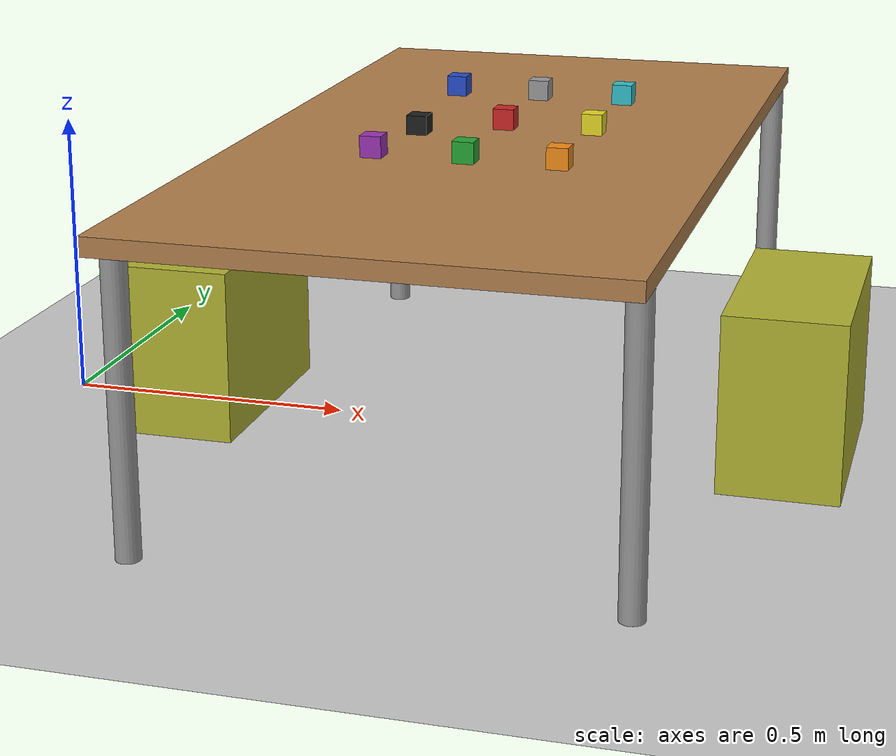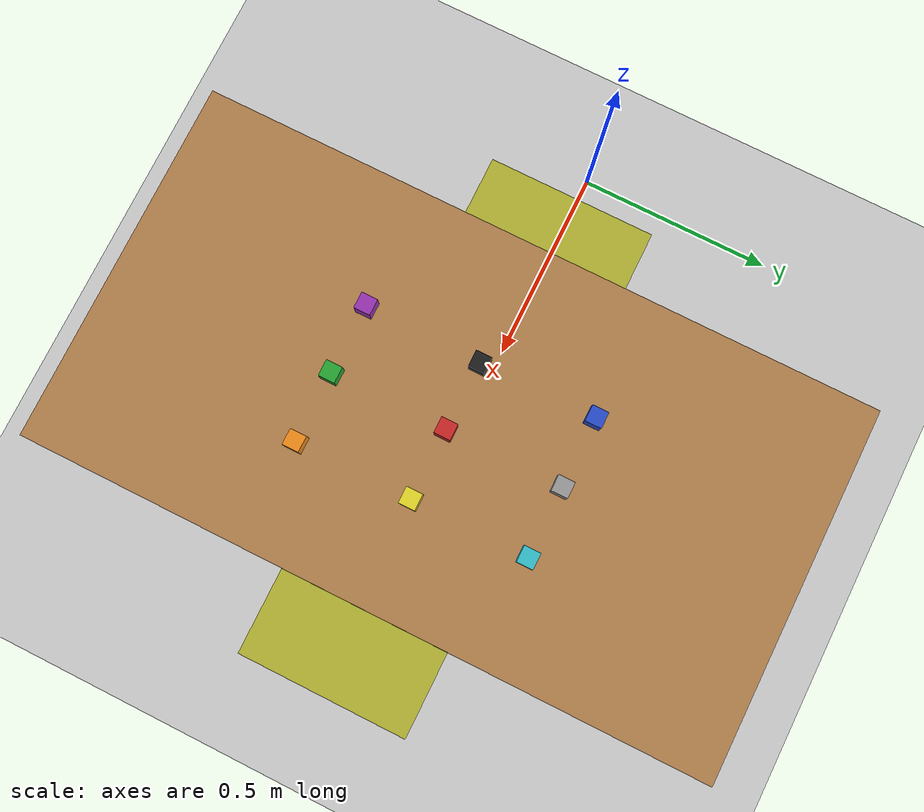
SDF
<sdf version="1.6">
 <world name="default">
  <physics name="5ms" type="ignored">
   <max_step_size>0.020</max_step_size>
   <real_time_factor>1.0</real_time_factor>
  </physics>
  <plugin filename="gz-sim-physics-system" name="gz::sim::systems::Physics"/>
  <plugin filename="gz-sim-user-commands-system" name="gz::sim::systems::UserCommands"/>
  <plugin filename="gz-sim-scene-broadcaster-system" name="gz::sim::systems::SceneBroadcaster"/>
  <plugin filename="gz-sim-sensors-system" name="gz::sim::systems::Sensors">
   <render_engine>ogre2</render_engine>
  </plugin>
  <plugin filename="gz-sim-imu-system" name="gz::sim::systems::Imu"/>
  <gravity>0.0 0.0 -9.8</gravity>
  <scene>
   <ambient>0.4 0.4 0.4 1</ambient>
   <background>0.7 0.7 0.7 1</background>
   <shadows>false</shadows>
   <grid>false</grid>
   <origin_visual>false</origin_visual>
  </scene>
  <light name="sun" type="directional">
   <pose>0 0 10 0 -0 0</pose>
   <diffuse>0.8 0.8 0.8 1</diffuse>
   <specular>0.2 0.2 0.2 1</specular>
   <attenuation>
    <range>1000</range>
    <constant>0.9</constant>
    <linear>0.01</linear>
    <quadratic>0.001</quadratic>
   </attenuation>
   <direction>-0.5 0.1 -0.9</direction>
  </light>
  <model name="ground_plane">
   <pose>0.5 0 0 0 0 0</pose>
   <static>true</static>
   <link name="ground_plane_link">
    <collision name="ground_plane_collision">
     <pose>0 0 -0.05 0 0 0</pose>
     <geometry><box><size>50 50 0.1</size></box></geometry>
    </collision>
    <visual name="ground_plane_visual">
     <geometry><plane><normal>0 0 1</normal><size>5 2</size></plane></geometry>
     <material><diffuse>0.8 0.8 0.8 1</diffuse><specular>0.8 0.8 0.8 1</specular></material>
    </visual>
   </link>
  </model>
  <model name="underground_plane">
   <pose>0.5 0 -10.0 0 0 0</pose>
   <static>true</static>
   <link name="underground_plane_link">
    <collision name="underground_plane_collision">
     <geometry><plane><normal>0 0 1</normal></plane></geometry>
    </collision>
   </link>
  </model>
  <model name="table">
   <static>true</static>
   <include><uri>model://Table</uri></include>
   <pose>0.78 0.0 0.0 0 0 1.5708</pose>
  </model>
  <model name="cube_red">
   <pose>0.8 0.0 0.55 0 0 0</pose>
   <link name="cube_red_link">
    <inertial>
     <inertia>
      <ixx>0.00025</ixx>
      <ixy>0.0</ixy>
      <ixz>0.0</ixz>
      <iyy>0.00025</iyy>
      <iyz>0.0</iyz>
      <izz>0.00025</izz>
     </inertia>
     <mass>0.1</mass>
    </inertial>
    <collision name="cube_red_collision">
     <geometry><box><size>0.035 0.035 0.035</size></box></geometry>
     <surface><friction><ode><mu>200.0</mu><mu2>200.0</mu2></ode></friction></surface>
    </collision>
    <visual name="cube_red_visual">
     <geometry><box><size>0.035 0.035 0.035</size></box></geometry>
     <material>
      <diffuse>0.1 0.1 0.1 1</diffuse>
      <specular>0.4 0.4 0.4 1</specular>
      <script><uri>file://media/materials/scripts/gazebo.material</uri><name>Gazebo/RedGlow</name></script>
     </material>
    </visual>
   </link>
  </model>
  <model name="cube_blue">
   <pose>0.65 0.25 0.55 0 0 0</pose>
   <link name="cube_blue_link">
    <inertial>
     <inertia>
      <ixx>0.00025</ixx>
      <ixy>0.0</ixy>
      <ixz>0.0</ixz>
      <iyy>0.00025</iyy>
      <iyz>0.0</iyz>
      <izz>0.00025</izz>
     </inertia>
     <mass>0.1</mass>
    </inertial>
    <collision name="cube_blue_collision">
     <geometry><box><size>0.035 0.035 0.035</size></box></geometry>
     <surface><friction><ode><mu>200.0</mu><mu2>200.0</mu2></ode></friction></surface>
    </collision>
    <visual name="cube_blue_visual">
     <geometry><box><size>0.035 0.035 0.035</size></box></geometry>
     <material>
      <diffuse>0.1 0.1 0.1 1</diffuse>
      <specular>0.4 0.4 0.4 1</specular>
      <script><uri>file://media/materials/scripts/gazebo.material</uri><name>Gazebo/Blue</name></script>
     </material>
    </visual>
   </link>
  </model>
  <model name="cube_green">
   <pose>0.8 -0.25 0.55 0 0 0</pose>
   <link name="cube_green_link">
    <inertial>
     <inertia>
      <ixx>0.00025</ixx>
      <ixy>0.0</ixy>
      <ixz>0.0</ixz>
      <iyy>0.00025</iyy>
      <iyz>0.0</iyz>
      <izz>0.00025</izz>
     </inertia>
     <mass>0.1</mass>
    </inertial>
    <collision name="cube_green_collision">
     <geometry><box><size>0.035 0.035 0.035</size></box></geometry>
     <surface><friction><ode><mu>200.0</mu><mu2>200.0</mu2></ode></friction></surface>
    </collision>
    <visual name="cube_green_visual">
     <geometry><box><size>0.035 0.035 0.035</size></box></geometry>
     <material>
      <diffuse>0.1 0.1 0.1 1</diffuse>
      <specular>0.4 0.4 0.4 1</specular>
      <script><uri>file://media/materials/scripts/gazebo.material</uri><name>Gazebo/Green</name></script>
     </material>
    </visual>
   </link>
  </model>
  <model name="cube_yellow">
   <pose>0.95 0.0 0.55 0 0 0</pose>
   <link name="cube_yellow_link">
    <inertial>
     <inertia>
      <ixx>0.00025</ixx>
      <ixy>0.0</ixy>
      <ixz>0.0</ixz>
      <iyy>0.00025</iyy>
      <iyz>0.0</iyz>
      <izz>0.00025</izz>
     </inertia>
     <mass>0.1</mass>
    </inertial>
    <collision name="cube_yellow_collision">
     <geometry><box><size>0.035 0.035 0.035</size></box></geometry>
     <surface><friction><ode><mu>200.0</mu><mu2>200.0</mu2></ode></friction></surface>
    </collision>
    <visual name="cube_yellow_visual">
     <geometry><box><size>0.035 0.035 0.035</size></box></geometry>
     <material>
      <diffuse>0.1 0.1 0.1 1</diffuse>
      <specular>0.4 0.4 0.4 1</specular>
      <script><uri>file://media/materials/scripts/gazebo.material</uri><name>Gazebo/Yellow</name></script>
     </material>
    </visual>
   </link>
  </model>
  <model name="cube_purple">
   <pose>0.65 -0.25 0.55 0 0 0</pose>
   <link name="cube_purple_link">
    <inertial>
     <inertia>
      <ixx>0.00025</ixx>
      <ixy>0.0</ixy>
      <ixz>0.0</ixz>
      <iyy>0.00025</iyy>
      <iyz>0.0</iyz>
      <izz>0.00025</izz>
     </inertia>
     <mass>0.1</mass>
    </inertial>
    <collision name="cube_purple_collision">
     <geometry><box><size>0.035 0.035 0.035</size></box></geometry>
     <surface><friction><ode><mu>200.0</mu><mu2>200.0</mu2></ode></friction></surface>
    </collision>
    <visual name="cube_purple_visual">
     <geometry><box><size>0.035 0.035 0.035</size></box></geometry>
     <material>
      <diffuse>0.1 0.1 0.1 1</diffuse>
      <specular>0.4 0.4 0.4 1</specular>
      <script><uri>file://media/materials/scripts/gazebo.material</uri><name>Gazebo/Purple</name></script>
     </material>
    </visual>
   </link>
  </model>
  <model name="cube_cyan">
   <pose>0.95 0.25 0.55 0 0 0</pose>
   <link name="cube_cyan_link">
    <inertial>
     <inertia>
      <ixx>0.00025</ixx>
      <ixy>0.0</ixy>
      <ixz>0.0</ixz>
      <iyy>0.00025</iyy>
      <iyz>0.0</iyz>
      <izz>0.00025</izz>
     </inertia>
     <mass>0.1</mass>
    </inertial>
    <collision name="cube_cyan_collision">
     <geometry><box><size>0.035 0.035 0.035</size></box></geometry>
     <surface><friction><ode><mu>200.0</mu><mu2>200.0</mu2></ode></friction></surface>
    </collision>
    <visual name="cube_cyan_visual">
     <geometry><box><size>0.035 0.035 0.035</size></box></geometry>
     <material>
      <diffuse>0.1 0.1 0.1 1</diffuse>
      <specular>0.4 0.4 0.4 1</specular>
      <script><uri>file://media/materials/scripts/gazebo.material</uri><name>Gazebo/Cyan</name></script>
     </material>
    </visual>
   </link>
  </model>
  <model name="cube_orange">
   <pose>0.95 -0.25 0.55 0 0 0</pose>
   <link name="cube_orange_link">
    <inertial>
     <inertia>
      <ixx>0.00025</ixx>
      <ixy>0.0</ixy>
      <ixz>0.0</ixz>
      <iyy>0.00025</iyy>
      <iyz>0.0</iyz>
      <izz>0.00025</izz>
     </inertia>
     <mass>0.1</mass>
    </inertial>
    <collision name="cube_orange_collision">
     <geometry><box><size>0.035 0.035 0.035</size></box></geometry>
     <surface><friction><ode><mu>200.0</mu><mu2>200.0</mu2></ode></friction></surface>
    </collision>
    <visual name="cube_orange_visual">
     <geometry><box><size>0.035 0.035 0.035</size></box></geometry>
     <material>
      <diffuse>0.1 0.1 0.1 1</diffuse>
      <specular>0.4 0.4 0.4 1</specular>
      <script><uri>file://media/materials/scripts/gazebo.material</uri><name>Gazebo/Orange</name></script>
     </material>
    </visual>
   </link>
  </model>
  <model name="cube_black">
   <pose>0.65 0.00 0.53 0.0 0 0</pose>
   <link name="cube_black_link">
    <inertial>
     <inertia>
      <ixx>0.00025</ixx>
      <ixy>0.0</ixy>
      <ixz>0.0</ixz>
      <iyy>0.00025</iyy>
      <iyz>0.0</iyz>
      <izz>0.00025</izz>
     </inertia>
     <mass>0.1</mass>
    </inertial>
    <collision name="cube_black_collision">
     <geometry><box><size>0.035 0.035 0.035</size></box></geometry>
     <surface><friction><ode><mu>200.0</mu><mu2>200.0</mu2></ode></friction></surface>
    </collision>
    <visual name="cube_black_visual">
     <geometry><box><size>0.035 0.035 0.035</size></box></geometry>
     <material>
      <diffuse>0.1 0.1 0.1 1</diffuse>
      <specular>0.4 0.4 0.4 1</specular>
      <script><uri>file://media/materials/scripts/gazebo.material</uri><name>Gazebo/Black</name></script>
     </material>
    </visual>
   </link>
  </model>
  <model name="cube_grey">
   <pose>0.8 0.25 0.55 0 0 0</pose>
   <link name="cube_grey_link">
    <inertial>
     <inertia>
      <ixx>0.00025</ixx>
      <ixy>0.0</ixy>
      <ixz>0.0</ixz>
      <iyy>0.00025</iyy>
      <iyz>0.0</iyz>
      <izz>0.00025</izz>
     </inertia>
     <mass>0.1</mass>
    </inertial>
    <collision name="cube_grey_collision">
     <geometry><box><size>0.035 0.035 0.035</size></box></geometry>
     <surface><friction><ode><mu>200.0</mu><mu2>200.0</mu2></ode></friction></surface>
    </collision>
    <visual name="cube_grey_visual">
     <geometry><box><size>0.035 0.035 0.035</size></box></geometry>
     <material>
      <diffuse>0.1 0.1 0.1 1</diffuse>
      <specular>0.4 0.4 0.4 1</specular>
      <script><uri>file://media/materials/scripts/gazebo.material</uri><name>Gazebo/Grey</name></script>
     </material>
    </visual>
   </link>
  </model>
  <model name="big_rectangle">
   <pose>1.3 0 0.15 0 0 0</pose>
   <static>true</static>
   <link name="big_rectangle_link">
    <collision name="big_rectangle_collision"><geometry><box><size>0.2 0.4 0.3</size></box></geometry></collision>
    <visual name="big_rectangle_visual">
     <geometry><box><size>0.2 0.4 0.3</size></box></geometry>
     <material><diffuse>0.7 0.7 0.2 1</diffuse><specular>0.2 0.2 0.2 1</specular></material>
    </visual>
   </link>
  </model>
  <model name="big_rectangle_two">
   <pose>0.27 0 0.15 0 0 0</pose>
   <static>true</static>
   <link name="big_rectangle_two">
    <collision name="big_rectangle_two_collision">
     <geometry><box><size>0.2 0.4 0.3</size></box></geometry>
    </collision>
    <visual name="big_rectangle_visual">
     <geometry><box><size>0.2 0.4 0.3</size></box></geometry>
     <material><diffuse>0.7 0.7 0.2 1</diffuse><specular>0.2 0.2 0.2 1</specular></material>
    </visual>
   </link>
  </model>
 </world>
</sdf>

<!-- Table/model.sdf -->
<sdf version="1.5">
  <model name="Table">
    <static>true</static>
    <link name="link">
      <collision name="surface">
        <pose>0 0 0.5 0 0 0</pose>
        <geometry>
          <box>
            <size>1.5 0.8 0.03</size>
          </box>
        </geometry>
        <surface>
          <friction>
            <ode>
              <mu>0.6</mu>
              <mu2>0.6</mu2>
            </ode>
          </friction>
        </surface>
      </collision>
      <visual name="visual1">
        <pose>0 0 0.5 0 0 0</pose>
        <geometry>
          <box>
            <size>1.5 0.8 0.03</size>
          </box>
        </geometry>
        <material>
          <diffuse>1.0 1.0 1.0</diffuse>
          <script>
            <uri>file://media/materials/scripts/gazebo.material</uri>
            <name>Gazebo/Wood</name>
          </script>
          <!-- PBR for Ignition, material scripts for gazebo classic-->
          <pbr>
            <metal>
              <albedo_map>model://Table/Table_Diffuse.jpg</albedo_map>
            </metal>
          </pbr>
        </material>
      </visual>

      <collision name="front_left_leg">
        <pose>0.68 0.38 0.25 0 0 0</pose>
        <geometry>
          <cylinder>
            <radius>0.02</radius>
            <length>0.5</length>
          </cylinder>
        </geometry>
      </collision>
      <visual name="front_left_leg">
        <pose>0.68 0.38 0.25 0 0 0</pose>
        <geometry>
          <cylinder>
            <radius>0.02</radius>
            <length>0.5</length>
          </cylinder>
        </geometry>
        <material>
          <diffuse>0.5 0.5 0.5</diffuse>
          <script>
            <uri>file://media/materials/scripts/gazebo.material</uri>
            <name>Gazebo/Grey</name>
          </script>
        </material>
      </visual>
      <collision name="front_right_leg">
        <pose>0.68 -0.38 0.25 0 0 0</pose>
        <geometry>
          <cylinder>
            <radius>0.02</radius>
            <length>0.5</length>
          </cylinder>
        </geometry>
      </collision>
      <visual name="front_right_leg">
        <pose>0.68 -0.38 0.25 0 0 0</pose>
        <geometry>
          <cylinder>
            <radius>0.02</radius>
            <length>0.5</length>
          </cylinder>
        </geometry>
        <material>
          <diffuse>0.5 0.5 0.5</diffuse>
          <script>
            <uri>file://media/materials/scripts/gazebo.material</uri>
            <name>Gazebo/Grey</name>
          </script>
        </material>
      </visual>
      <collision name="back_right_leg">
        <pose>-0.68 -0.38 0.25 0 0 0</pose>
        <geometry>
          <cylinder>
            <radius>0.02</radius>
            <length>0.5</length>
          </cylinder>
        </geometry>
      </collision>
      <visual name="back_right_leg">
        <pose>-0.68 -0.38 0.25 0 0 0</pose>
        <geometry>
          <cylinder>
            <radius>0.02</radius>
            <length>0.5</length>
          </cylinder>
        </geometry>
        <material>
          <diffuse>0.5 0.5 0.5</diffuse>
          <script>
            <uri>file://media/materials/scripts/gazebo.material</uri>
            <name>Gazebo/Grey</name>
          </script>
        </material>
      </visual>
      <collision name="back_left_leg">
        <pose>-0.68 0.38 0.25 0 0 0</pose>
        <geometry>
          <cylinder>
            <radius>0.02</radius>
            <length>0.5</length>
          </cylinder>
        </geometry>
      </collision>
      <visual name="back_left_leg">
        <pose>-0.68 0.38 0.25 0 0 0</pose>
        <geometry>
          <cylinder>
            <radius>0.02</radius>
            <length>0.5</length>
          </cylinder>
        </geometry>
        <material>
          <diffuse>0.5 0.5 0.5</diffuse>
          <script>
            <uri>file://media/materials/scripts/gazebo.material</uri>
            <name>Gazebo/Grey</name>
          </script>
        </material>
      </visual>
    </link>
  </model>
</sdf>
